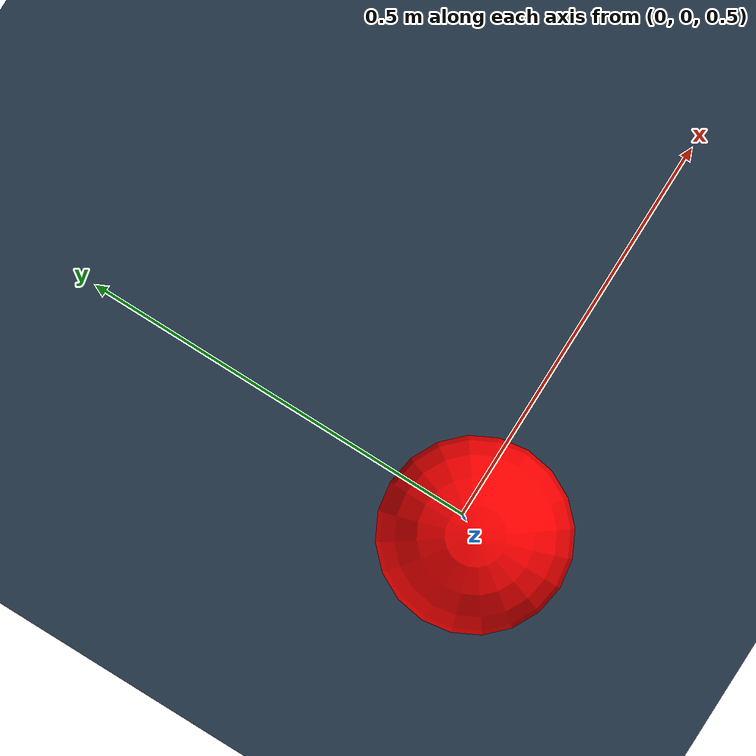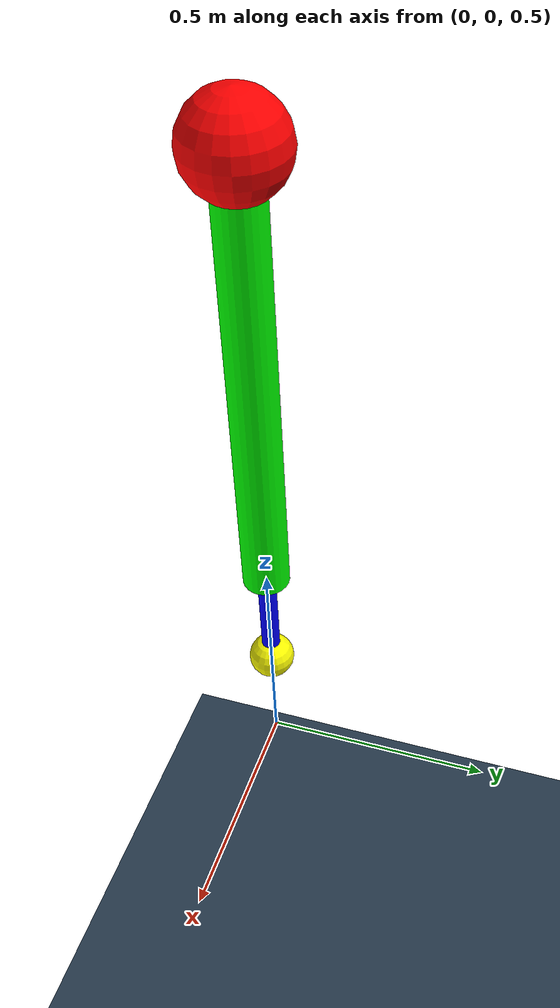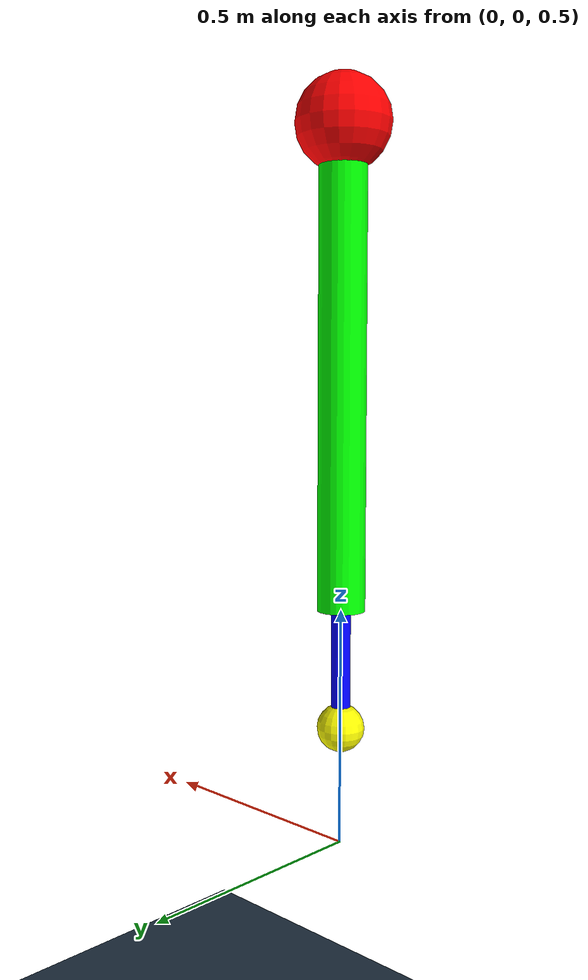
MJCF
<mujoco>
    <asset>
      <texture type="skybox" builtin="gradient" rgb1="1 1 1" rgb2="0.6 0.8 1" width="256" height="256"/>
      <texture name="texplane" type="2d" builtin="checker" rgb1=".2 .3 .4" rgb2=".1 0.15 0.2" width="512" height="512" mark="cross" markrgb=".8 .8 .8"/>
      <material name="matplane" reflectance="0.3" texture="texplane" texrepeat="1 1" texuniform="true"/>
  </asset>
  <option timestep="0.001" integrator="RK4" gravity="0 0 -9.81">
      <flag sensornoise="disable" contact="enable" energy="enable"/>
  </option>

  <worldbody>
  <light diffuse="10 10 10" pos="0 0 10" dir="0 0 -1"/>
      <geom type="plane" size="25 10 0.1" material="matplane"/>
      <body name="torso" pos="0 0 2" >
          <joint name="x" type="slide" pos="0 0 0" axis="1 0 0" />
          <joint name="z" type="slide" pos="0 0 0" axis="0 0 1" />
          <geom type="sphere" size=".1" rgba="1 0 0 1" mass="1"/>
          <body name="leg" pos="0 0 -0.5" >
              <joint name="hip" type="hinge" pos="0 0 0.5" axis="0 -1 0" />
              <geom type="cylinder" size="0.05 0.5" rgba="0 1 0 1" mass="1"/>
              <body name="foot" pos="0 0 -0.75" >
                  <joint name="knee" type="slide" pos="0 0 0.25" axis="0 0 -1" />
                  <geom type="cylinder" pos = "0 0 0.125" size=".02 0.125" rgba="0 0 1 1" mass="0"/>
                  <geom type="sphere" size="0.05" rgba="1 1 .0 1" mass="0.1"/>
              </body>
          </body>
      </body>
  </worldbody>

  <actuator>
      <position name="hip_p" joint="hip" />
      <velocity name="hip_v" joint="hip" />
      <position name="knee_p" joint="knee"/>
      <velocity name="knee_v" joint="knee"/>
  </actuator>

</mujoco>
